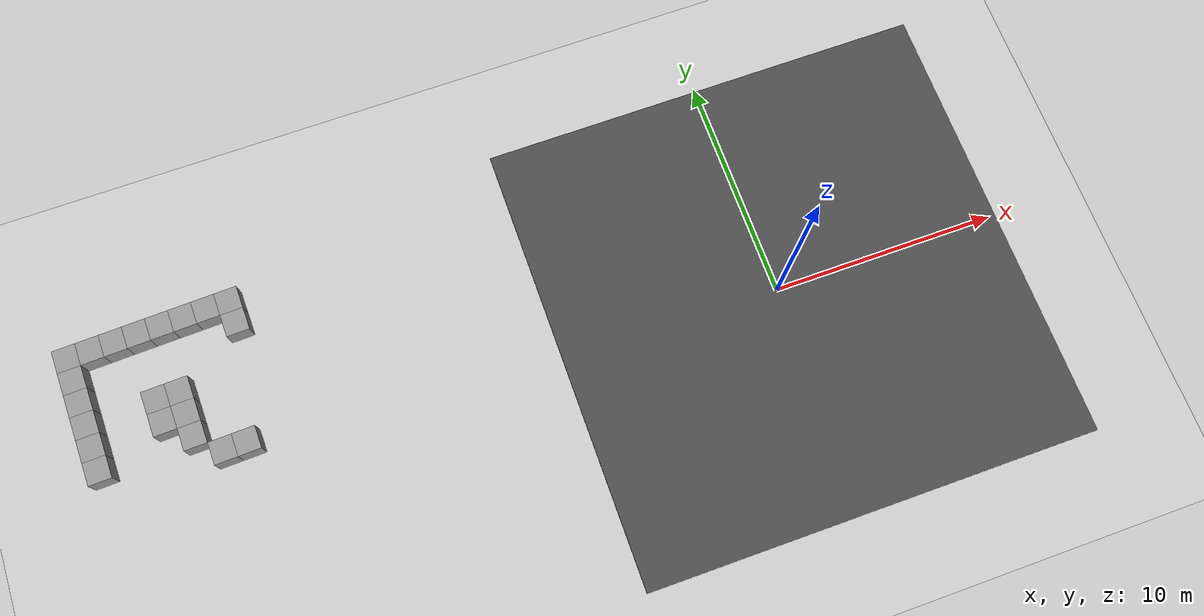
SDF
<sdf version="1.6">
 <world name="default">
  <model name="ground_plane">
   <static>1</static>
   <link name="link">
    <collision name="collision">
     <geometry><plane><normal>0 0 1</normal><size>100 100</size></plane></geometry>
     <surface><friction><ode><mu>100</mu><mu2>50</mu2></ode></friction></surface>
    </collision>
    <visual name="visual">
     <cast_shadows>0</cast_shadows>
     <geometry><plane><normal>0 0 1</normal><size>100 100</size></plane></geometry>
     <material>
      <script><uri>file://media/materials/scripts/gazebo.material</uri><name>Gazebo/Grey</name></script>
     </material>
    </visual>
    <velocity_decay><linear>0</linear><angular>0</angular></velocity_decay>
   </link>
  </model>
  <model name="asphalt_plane">
   <static>1</static>
   <link name="link">
    <collision name="collision"><geometry><box><size>20 20 0.1</size></box></geometry></collision>
    <visual name="visual">
     <cast_shadows>0</cast_shadows>
     <geometry><box><size>20 20 0.1</size></box></geometry>
     <material>
      <script>
       <uri>model://asphalt_plane/materials/scripts</uri>
       <uri>model://asphalt_plane/materials/textures</uri>
       <name>vrc/asphalt</name>
      </script>
     </material>
    </visual>
    <velocity_decay><linear>0</linear><angular>0</angular></velocity_decay>
   </link>
   <pose>0.276446 -0.119478 0 0 -0 0</pose>
  </model>
  <model name="maze">
   <link name="link_clone_22">
    <pose>-1.9747 7.43991 0 0 -0 0</pose>
    <inertial>
     <mass>10</mass>
     <inertia>
      <ixx>0.166667</ixx>
      <ixy>0</ixy>
      <ixz>0</ixz>
      <iyy>0.166667</iyy>
      <iyz>0</iyz>
      <izz>0.166667</izz>
     </inertia>
    </inertial>
    <visual name="visual">
     <geometry><box><size>1 1 1</size></box></geometry>
     <material>
      <script><name>Gazebo/Grey</name><uri>file://media/materials/scripts/gazebo.material</uri></script>
      <ambient>0.3 0.3 0.3 1</ambient>
      <diffuse>0.7 0.7 0.7 1</diffuse>
      <specular>0.01 0.01 0.01 1</specular>
      <emissive>0 0 0 1</emissive>
      <shader type="vertex"><normal_map>__default__</normal_map></shader>
     </material>
    </visual>
    <collision name="collision">
     <geometry><box><size>1 1 1</size></box></geometry>
     <surface>
      <friction>
       <ode><mu>1</mu><mu2>1</mu2><fdir1>0 0 0</fdir1><slip1>0</slip1><slip2>0</slip2></ode>
       <torsional>
        <coefficient>1</coefficient>
        <patch_radius>0</patch_radius>
        <surface_radius>0</surface_radius>
        <use_patch_radius>1</use_patch_radius>
        <ode><slip>0</slip></ode>
       </torsional>
      </friction>
      <bounce><restitution_coefficient>0</restitution_coefficient><threshold>1e+06</threshold></bounce>
      <contact>
       <collide_without_contact>0</collide_without_contact>
       <collide_without_contact_bitmask>1</collide_without_contact_bitmask>
       <collide_bitmask>1</collide_bitmask>
       <ode>
        <soft_cfm>0</soft_cfm>
        <soft_erp>0.2</soft_erp>
        <kp>1e+13</kp>
        <kd>1</kd>
        <max_vel>0.01</max_vel>
        <min_depth>0</min_depth>
       </ode>
       <bullet>
        <split_impulse>1</split_impulse>
        <split_impulse_penetration_threshold>-0.01</split_impulse_penetration_threshold>
        <soft_cfm>0</soft_cfm>
        <soft_erp>0.2</soft_erp>
        <kp>1e+13</kp>
        <kd>1</kd>
       </bullet>
      </contact>
     </surface>
    </collision>
   </link>
   <link name="link_clone_23">
    <pose>-2.9747 8.43991 0 0 -0 0</pose>
    <inertial>
     <mass>10</mass>
     <inertia>
      <ixx>0.166667</ixx>
      <ixy>0</ixy>
      <ixz>0</ixz>
      <iyy>0.166667</iyy>
      <iyz>0</iyz>
      <izz>0.166667</izz>
     </inertia>
    </inertial>
    <visual name="visual">
     <geometry><box><size>1 1 1</size></box></geometry>
     <material>
      <script><name>Gazebo/Grey</name><uri>file://media/materials/scripts/gazebo.material</uri></script>
      <ambient>0.3 0.3 0.3 1</ambient>
      <diffuse>0.7 0.7 0.7 1</diffuse>
      <specular>0.01 0.01 0.01 1</specular>
      <emissive>0 0 0 1</emissive>
      <shader type="vertex"><normal_map>__default__</normal_map></shader>
     </material>
    </visual>
    <collision name="collision">
     <geometry><box><size>1 1 1</size></box></geometry>
     <surface>
      <friction>
       <ode><mu>1</mu><mu2>1</mu2><fdir1>0 0 0</fdir1><slip1>0</slip1><slip2>0</slip2></ode>
       <torsional>
        <coefficient>1</coefficient>
        <patch_radius>0</patch_radius>
        <surface_radius>0</surface_radius>
        <use_patch_radius>1</use_patch_radius>
        <ode><slip>0</slip></ode>
       </torsional>
      </friction>
      <bounce><restitution_coefficient>0</restitution_coefficient><threshold>1e+06</threshold></bounce>
      <contact>
       <collide_without_contact>0</collide_without_contact>
       <collide_without_contact_bitmask>1</collide_without_contact_bitmask>
       <collide_bitmask>1</collide_bitmask>
       <ode>
        <soft_cfm>0</soft_cfm>
        <soft_erp>0.2</soft_erp>
        <kp>1e+13</kp>
        <kd>1</kd>
        <max_vel>0.01</max_vel>
        <min_depth>0</min_depth>
       </ode>
       <bullet>
        <split_impulse>1</split_impulse>
        <split_impulse_penetration_threshold>-0.01</split_impulse_penetration_threshold>
        <soft_cfm>0</soft_cfm>
        <soft_erp>0.2</soft_erp>
        <kp>1e+13</kp>
        <kd>1</kd>
       </bullet>
      </contact>
     </surface>
    </collision>
   </link>
   <link name="link_clone_24">
    <pose>-3.9747 9.43991 0 0 -0 0</pose>
    <inertial>
     <mass>10</mass>
     <inertia>
      <ixx>0.166667</ixx>
      <ixy>0</ixy>
      <ixz>0</ixz>
      <iyy>0.166667</iyy>
      <iyz>0</iyz>
      <izz>0.166667</izz>
     </inertia>
    </inertial>
    <visual name="visual">
     <geometry><box><size>1 1 1</size></box></geometry>
     <material>
      <script><name>Gazebo/Grey</name><uri>file://media/materials/scripts/gazebo.material</uri></script>
      <ambient>0.3 0.3 0.3 1</ambient>
      <diffuse>0.7 0.7 0.7 1</diffuse>
      <specular>0.01 0.01 0.01 1</specular>
      <emissive>0 0 0 1</emissive>
      <shader type="vertex"><normal_map>__default__</normal_map></shader>
     </material>
    </visual>
    <collision name="collision">
     <geometry><box><size>1 1 1</size></box></geometry>
     <surface>
      <friction>
       <ode><mu>1</mu><mu2>1</mu2><fdir1>0 0 0</fdir1><slip1>0</slip1><slip2>0</slip2></ode>
       <torsional>
        <coefficient>1</coefficient>
        <patch_radius>0</patch_radius>
        <surface_radius>0</surface_radius>
        <use_patch_radius>1</use_patch_radius>
        <ode><slip>0</slip></ode>
       </torsional>
      </friction>
      <bounce><restitution_coefficient>0</restitution_coefficient><threshold>1e+06</threshold></bounce>
      <contact>
       <collide_without_contact>0</collide_without_contact>
       <collide_without_contact_bitmask>1</collide_without_contact_bitmask>
       <collide_bitmask>1</collide_bitmask>
       <ode>
        <soft_cfm>0</soft_cfm>
        <soft_erp>0.2</soft_erp>
        <kp>1e+13</kp>
        <kd>1</kd>
        <max_vel>0.01</max_vel>
        <min_depth>0</min_depth>
       </ode>
       <bullet>
        <split_impulse>1</split_impulse>
        <split_impulse_penetration_threshold>-0.01</split_impulse_penetration_threshold>
        <soft_cfm>0</soft_cfm>
        <soft_erp>0.2</soft_erp>
        <kp>1e+13</kp>
        <kd>1</kd>
       </bullet>
      </contact>
     </surface>
    </collision>
   </link>
   <link name="link_clone_29">
    <pose>-6.9747 8.43991 0 0 -0 0</pose>
    <inertial>
     <mass>10</mass>
     <inertia>
      <ixx>0.166667</ixx>
      <ixy>0</ixy>
      <ixz>0</ixz>
      <iyy>0.166667</iyy>
      <iyz>0</iyz>
      <izz>0.166667</izz>
     </inertia>
    </inertial>
    <visual name="visual">
     <geometry><box><size>1 1 1</size></box></geometry>
     <material>
      <script><name>Gazebo/Grey</name><uri>file://media/materials/scripts/gazebo.material</uri></script>
      <ambient>0.3 0.3 0.3 1</ambient>
      <diffuse>0.7 0.7 0.7 1</diffuse>
      <specular>0.01 0.01 0.01 1</specular>
      <emissive>0 0 0 1</emissive>
      <shader type="vertex"><normal_map>__default__</normal_map></shader>
     </material>
    </visual>
    <collision name="collision">
     <geometry><box><size>1 1 1</size></box></geometry>
     <surface>
      <friction>
       <ode><mu>1</mu><mu2>1</mu2><fdir1>0 0 0</fdir1><slip1>0</slip1><slip2>0</slip2></ode>
       <torsional>
        <coefficient>1</coefficient>
        <patch_radius>0</patch_radius>
        <surface_radius>0</surface_radius>
        <use_patch_radius>1</use_patch_radius>
        <ode><slip>0</slip></ode>
       </torsional>
      </friction>
      <bounce><restitution_coefficient>0</restitution_coefficient><threshold>1e+06</threshold></bounce>
      <contact>
       <collide_without_contact>0</collide_without_contact>
       <collide_without_contact_bitmask>1</collide_without_contact_bitmask>
       <collide_bitmask>1</collide_bitmask>
       <ode>
        <soft_cfm>0</soft_cfm>
        <soft_erp>0.2</soft_erp>
        <kp>1e+13</kp>
        <kd>1</kd>
        <max_vel>0.01</max_vel>
        <min_depth>0</min_depth>
       </ode>
       <bullet>
        <split_impulse>1</split_impulse>
        <split_impulse_penetration_threshold>-0.01</split_impulse_penetration_threshold>
        <soft_cfm>0</soft_cfm>
        <soft_erp>0.2</soft_erp>
        <kp>1e+13</kp>
        <kd>1</kd>
       </bullet>
      </contact>
     </surface>
    </collision>
   </link>
   <link name="link_clone_30">
    <pose>-6.9747 9.43991 0 0 -0 0</pose>
    <inertial>
     <mass>10</mass>
     <inertia>
      <ixx>0.166667</ixx>
      <ixy>0</ixy>
      <ixz>0</ixz>
      <iyy>0.166667</iyy>
      <iyz>0</iyz>
      <izz>0.166667</izz>
     </inertia>
    </inertial>
    <visual name="visual">
     <geometry><box><size>1 1 1</size></box></geometry>
     <material>
      <script><name>Gazebo/Grey</name><uri>file://media/materials/scripts/gazebo.material</uri></script>
      <ambient>0.3 0.3 0.3 1</ambient>
      <diffuse>0.7 0.7 0.7 1</diffuse>
      <specular>0.01 0.01 0.01 1</specular>
      <emissive>0 0 0 1</emissive>
      <shader type="vertex"><normal_map>__default__</normal_map></shader>
     </material>
    </visual>
    <collision name="collision">
     <geometry><box><size>1 1 1</size></box></geometry>
     <surface>
      <friction>
       <ode><mu>1</mu><mu2>1</mu2><fdir1>0 0 0</fdir1><slip1>0</slip1><slip2>0</slip2></ode>
       <torsional>
        <coefficient>1</coefficient>
        <patch_radius>0</patch_radius>
        <surface_radius>0</surface_radius>
        <use_patch_radius>1</use_patch_radius>
        <ode><slip>0</slip></ode>
       </torsional>
      </friction>
      <bounce><restitution_coefficient>0</restitution_coefficient><threshold>1e+06</threshold></bounce>
      <contact>
       <collide_without_contact>0</collide_without_contact>
       <collide_without_contact_bitmask>1</collide_without_contact_bitmask>
       <collide_bitmask>1</collide_bitmask>
       <ode>
        <soft_cfm>0</soft_cfm>
        <soft_erp>0.2</soft_erp>
        <kp>1e+13</kp>
        <kd>1</kd>
        <max_vel>0.01</max_vel>
        <min_depth>0</min_depth>
       </ode>
       <bullet>
        <split_impulse>1</split_impulse>
        <split_impulse_penetration_threshold>-0.01</split_impulse_penetration_threshold>
        <soft_cfm>0</soft_cfm>
        <soft_erp>0.2</soft_erp>
        <kp>1e+13</kp>
        <kd>1</kd>
       </bullet>
      </contact>
     </surface>
    </collision>
   </link>
   <link name="link_clone_31">
    <pose>-6.9747 10.4399 -0 0 -0 0</pose>
    <inertial>
     <mass>10</mass>
     <inertia>
      <ixx>0.166667</ixx>
      <ixy>0</ixy>
      <ixz>0</ixz>
      <iyy>0.166667</iyy>
      <iyz>0</iyz>
      <izz>0.166667</izz>
     </inertia>
    </inertial>
    <visual name="visual">
     <geometry><box><size>1 1 1</size></box></geometry>
     <material>
      <script><name>Gazebo/Grey</name><uri>file://media/materials/scripts/gazebo.material</uri></script>
      <ambient>0.3 0.3 0.3 1</ambient>
      <diffuse>0.7 0.7 0.7 1</diffuse>
      <specular>0.01 0.01 0.01 1</specular>
      <emissive>0 0 0 1</emissive>
      <shader type="vertex"><normal_map>__default__</normal_map></shader>
     </material>
    </visual>
    <collision name="collision">
     <geometry><box><size>1 1 1</size></box></geometry>
     <surface>
      <friction>
       <ode><mu>1</mu><mu2>1</mu2><fdir1>0 0 0</fdir1><slip1>0</slip1><slip2>0</slip2></ode>
       <torsional>
        <coefficient>1</coefficient>
        <patch_radius>0</patch_radius>
        <surface_radius>0</surface_radius>
        <use_patch_radius>1</use_patch_radius>
        <ode><slip>0</slip></ode>
       </torsional>
      </friction>
      <bounce><restitution_coefficient>0</restitution_coefficient><threshold>1e+06</threshold></bounce>
      <contact>
       <collide_without_contact>0</collide_without_contact>
       <collide_without_contact_bitmask>1</collide_without_contact_bitmask>
       <collide_bitmask>1</collide_bitmask>
       <ode>
        <soft_cfm>0</soft_cfm>
        <soft_erp>0.2</soft_erp>
        <kp>1e+13</kp>
        <kd>1</kd>
        <max_vel>0.01</max_vel>
        <min_depth>0</min_depth>
       </ode>
       <bullet>
        <split_impulse>1</split_impulse>
        <split_impulse_penetration_threshold>-0.01</split_impulse_penetration_threshold>
        <soft_cfm>0</soft_cfm>
        <soft_erp>0.2</soft_erp>
        <kp>1e+13</kp>
        <kd>1</kd>
       </bullet>
      </contact>
     </surface>
    </collision>
   </link>
   <link name="link_clone_32">
    <pose>-3.9747 10.4399 0 0 -0 0</pose>
    <inertial>
     <mass>10</mass>
     <inertia>
      <ixx>0.166667</ixx>
      <ixy>0</ixy>
      <ixz>0</ixz>
      <iyy>0.166667</iyy>
      <iyz>0</iyz>
      <izz>0.166667</izz>
     </inertia>
    </inertial>
    <visual name="visual">
     <geometry><box><size>1 1 1</size></box></geometry>
     <material>
      <script><name>Gazebo/Grey</name><uri>file://media/materials/scripts/gazebo.material</uri></script>
      <ambient>0.3 0.3 0.3 1</ambient>
      <diffuse>0.7 0.7 0.7 1</diffuse>
      <specular>0.01 0.01 0.01 1</specular>
      <emissive>0 0 0 1</emissive>
      <shader type="vertex"><normal_map>__default__</normal_map></shader>
     </material>
    </visual>
    <collision name="collision">
     <geometry><box><size>1 1 1</size></box></geometry>
     <surface>
      <friction>
       <ode><mu>1</mu><mu2>1</mu2><fdir1>0 0 0</fdir1><slip1>0</slip1><slip2>0</slip2></ode>
       <torsional>
        <coefficient>1</coefficient>
        <patch_radius>0</patch_radius>
        <surface_radius>0</surface_radius>
        <use_patch_radius>1</use_patch_radius>
        <ode><slip>0</slip></ode>
       </torsional>
      </friction>
      <bounce><restitution_coefficient>0</restitution_coefficient><threshold>1e+06</threshold></bounce>
      <contact>
       <collide_without_contact>0</collide_without_contact>
       <collide_without_contact_bitmask>1</collide_without_contact_bitmask>
       <collide_bitmask>1</collide_bitmask>
       <ode>
        <soft_cfm>0</soft_cfm>
        <soft_erp>0.2</soft_erp>
        <kp>1e+13</kp>
        <kd>1</kd>
        <max_vel>0.01</max_vel>
        <min_depth>0</min_depth>
       </ode>
       <bullet>
        <split_impulse>1</split_impulse>
        <split_impulse_penetration_threshold>-0.01</split_impulse_penetration_threshold>
        <soft_cfm>0</soft_cfm>
        <soft_erp>0.2</soft_erp>
        <kp>1e+13</kp>
        <kd>1</kd>
       </bullet>
      </contact>
     </surface>
    </collision>
   </link>
   <link name="link_clone_33">
    <pose>-6.9747 11.4399 -0 0 -0 0</pose>
    <inertial>
     <mass>10</mass>
     <inertia>
      <ixx>0.166667</ixx>
      <ixy>0</ixy>
      <ixz>0</ixz>
      <iyy>0.166667</iyy>
      <iyz>0</iyz>
      <izz>0.166667</izz>
     </inertia>
    </inertial>
    <visual name="visual">
     <geometry><box><size>1 1 1</size></box></geometry>
     <material>
      <script><name>Gazebo/Grey</name><uri>file://media/materials/scripts/gazebo.material</uri></script>
      <ambient>0.3 0.3 0.3 1</ambient>
      <diffuse>0.7 0.7 0.7 1</diffuse>
      <specular>0.01 0.01 0.01 1</specular>
      <emissive>0 0 0 1</emissive>
      <shader type="vertex"><normal_map>__default__</normal_map></shader>
     </material>
    </visual>
    <collision name="collision">
     <geometry><box><size>1 1 1</size></box></geometry>
     <surface>
      <friction>
       <ode><mu>1</mu><mu2>1</mu2><fdir1>0 0 0</fdir1><slip1>0</slip1><slip2>0</slip2></ode>
       <torsional>
        <coefficient>1</coefficient>
        <patch_radius>0</patch_radius>
        <surface_radius>0</surface_radius>
        <use_patch_radius>1</use_patch_radius>
        <ode><slip>0</slip></ode>
       </torsional>
      </friction>
      <bounce><restitution_coefficient>0</restitution_coefficient><threshold>1e+06</threshold></bounce>
      <contact>
       <collide_without_contact>0</collide_without_contact>
       <collide_without_contact_bitmask>1</collide_without_contact_bitmask>
       <collide_bitmask>1</collide_bitmask>
       <ode>
        <soft_cfm>0</soft_cfm>
        <soft_erp>0.2</soft_erp>
        <kp>1e+13</kp>
        <kd>1</kd>
        <max_vel>0.01</max_vel>
        <min_depth>0</min_depth>
       </ode>
       <bullet>
        <split_impulse>1</split_impulse>
        <split_impulse_penetration_threshold>-0.01</split_impulse_penetration_threshold>
        <soft_cfm>0</soft_cfm>
        <soft_erp>0.2</soft_erp>
        <kp>1e+13</kp>
        <kd>1</kd>
       </bullet>
      </contact>
     </surface>
    </collision>
   </link>
   <link name="link_clone_34">
    <pose>-6.9747 12.4399 -0 0 -0 0</pose>
    <inertial>
     <mass>10</mass>
     <inertia>
      <ixx>0.166667</ixx>
      <ixy>0</ixy>
      <ixz>0</ixz>
      <iyy>0.166667</iyy>
      <iyz>0</iyz>
      <izz>0.166667</izz>
     </inertia>
    </inertial>
    <visual name="visual">
     <geometry><box><size>1 1 1</size></box></geometry>
     <material>
      <script><name>Gazebo/Grey</name><uri>file://media/materials/scripts/gazebo.material</uri></script>
      <ambient>0.3 0.3 0.3 1</ambient>
      <diffuse>0.7 0.7 0.7 1</diffuse>
      <specular>0.01 0.01 0.01 1</specular>
      <emissive>0 0 0 1</emissive>
      <shader type="vertex"><normal_map>__default__</normal_map></shader>
     </material>
    </visual>
    <collision name="collision">
     <geometry><box><size>1 1 1</size></box></geometry>
     <surface>
      <friction>
       <ode><mu>1</mu><mu2>1</mu2><fdir1>0 0 0</fdir1><slip1>0</slip1><slip2>0</slip2></ode>
       <torsional>
        <coefficient>1</coefficient>
        <patch_radius>0</patch_radius>
        <surface_radius>0</surface_radius>
        <use_patch_radius>1</use_patch_radius>
        <ode><slip>0</slip></ode>
       </torsional>
      </friction>
      <bounce><restitution_coefficient>0</restitution_coefficient><threshold>1e+06</threshold></bounce>
      <contact>
       <collide_without_contact>0</collide_without_contact>
       <collide_without_contact_bitmask>1</collide_without_contact_bitmask>
       <collide_bitmask>1</collide_bitmask>
       <ode>
        <soft_cfm>0</soft_cfm>
        <soft_erp>0.2</soft_erp>
        <kp>1e+13</kp>
        <kd>1</kd>
        <max_vel>0.01</max_vel>
        <min_depth>0</min_depth>
       </ode>
       <bullet>
        <split_impulse>1</split_impulse>
        <split_impulse_penetration_threshold>-0.01</split_impulse_penetration_threshold>
        <soft_cfm>0</soft_cfm>
        <soft_erp>0.2</soft_erp>
        <kp>1e+13</kp>
        <kd>1</kd>
       </bullet>
      </contact>
     </surface>
    </collision>
   </link>
   <link name="link_clone_35">
    <pose>-6.9747 13.4399 -0 0 -0 0</pose>
    <inertial>
     <mass>10</mass>
     <inertia>
      <ixx>0.166667</ixx>
      <ixy>0</ixy>
      <ixz>0</ixz>
      <iyy>0.166667</iyy>
      <iyz>0</iyz>
      <izz>0.166667</izz>
     </inertia>
    </inertial>
    <visual name="visual">
     <geometry><box><size>1 1 1</size></box></geometry>
     <material>
      <script><name>Gazebo/Grey</name><uri>file://media/materials/scripts/gazebo.material</uri></script>
      <ambient>0.3 0.3 0.3 1</ambient>
      <diffuse>0.7 0.7 0.7 1</diffuse>
      <specular>0.01 0.01 0.01 1</specular>
      <emissive>0 0 0 1</emissive>
      <shader type="vertex"><normal_map>__default__</normal_map></shader>
     </material>
    </visual>
    <collision name="collision">
     <geometry><box><size>1 1 1</size></box></geometry>
     <surface>
      <friction>
       <ode><mu>1</mu><mu2>1</mu2><fdir1>0 0 0</fdir1><slip1>0</slip1><slip2>0</slip2></ode>
       <torsional>
        <coefficient>1</coefficient>
        <patch_radius>0</patch_radius>
        <surface_radius>0</surface_radius>
        <use_patch_radius>1</use_patch_radius>
        <ode><slip>0</slip></ode>
       </torsional>
      </friction>
      <bounce><restitution_coefficient>0</restitution_coefficient><threshold>1e+06</threshold></bounce>
      <contact>
       <collide_without_contact>0</collide_without_contact>
       <collide_without_contact_bitmask>1</collide_without_contact_bitmask>
       <collide_bitmask>1</collide_bitmask>
       <ode>
        <soft_cfm>0</soft_cfm>
        <soft_erp>0.2</soft_erp>
        <kp>1e+13</kp>
        <kd>1</kd>
        <max_vel>0.01</max_vel>
        <min_depth>0</min_depth>
       </ode>
       <bullet>
        <split_impulse>1</split_impulse>
        <split_impulse_penetration_threshold>-0.01</split_impulse_penetration_threshold>
        <soft_cfm>0</soft_cfm>
        <soft_erp>0.2</soft_erp>
        <kp>1e+13</kp>
        <kd>1</kd>
       </bullet>
      </contact>
     </surface>
    </collision>
   </link>
   <link name="link_clone_36">
    <pose>-5.9747 13.4399 0 0 -0 0</pose>
    <inertial>
     <mass>10</mass>
     <inertia>
      <ixx>0.166667</ixx>
      <ixy>0</ixy>
      <ixz>0</ixz>
      <iyy>0.166667</iyy>
      <iyz>0</iyz>
      <izz>0.166667</izz>
     </inertia>
    </inertial>
    <visual name="visual">
     <geometry><box><size>1 1 1</size></box></geometry>
     <material>
      <script><name>Gazebo/Grey</name><uri>file://media/materials/scripts/gazebo.material</uri></script>
      <ambient>0.3 0.3 0.3 1</ambient>
      <diffuse>0.7 0.7 0.7 1</diffuse>
      <specular>0.01 0.01 0.01 1</specular>
      <emissive>0 0 0 1</emissive>
      <shader type="vertex"><normal_map>__default__</normal_map></shader>
     </material>
    </visual>
    <collision name="collision">
     <geometry><box><size>1 1 1</size></box></geometry>
     <surface>
      <friction>
       <ode><mu>1</mu><mu2>1</mu2><fdir1>0 0 0</fdir1><slip1>0</slip1><slip2>0</slip2></ode>
       <torsional>
        <coefficient>1</coefficient>
        <patch_radius>0</patch_radius>
        <surface_radius>0</surface_radius>
        <use_patch_radius>1</use_patch_radius>
        <ode><slip>0</slip></ode>
       </torsional>
      </friction>
      <bounce><restitution_coefficient>0</restitution_coefficient><threshold>1e+06</threshold></bounce>
      <contact>
       <collide_without_contact>0</collide_without_contact>
       <collide_without_contact_bitmask>1</collide_without_contact_bitmask>
       <collide_bitmask>1</collide_bitmask>
       <ode>
        <soft_cfm>0</soft_cfm>
        <soft_erp>0.2</soft_erp>
        <kp>1e+13</kp>
        <kd>1</kd>
        <max_vel>0.01</max_vel>
        <min_depth>0</min_depth>
       </ode>
       <bullet>
        <split_impulse>1</split_impulse>
        <split_impulse_penetration_threshold>-0.01</split_impulse_penetration_threshold>
        <soft_cfm>0</soft_cfm>
        <soft_erp>0.2</soft_erp>
        <kp>1e+13</kp>
        <kd>1</kd>
       </bullet>
      </contact>
     </surface>
    </collision>
   </link>
   <link name="link_clone_37">
    <pose>-4.9747 13.4399 0 0 -0 0</pose>
    <inertial>
     <mass>10</mass>
     <inertia>
      <ixx>0.166667</ixx>
      <ixy>0</ixy>
      <ixz>0</ixz>
      <iyy>0.166667</iyy>
      <iyz>0</iyz>
      <izz>0.166667</izz>
     </inertia>
    </inertial>
    <visual name="visual">
     <geometry><box><size>1 1 1</size></box></geometry>
     <material>
      <script><name>Gazebo/Grey</name><uri>file://media/materials/scripts/gazebo.material</uri></script>
      <ambient>0.3 0.3 0.3 1</ambient>
      <diffuse>0.7 0.7 0.7 1</diffuse>
      <specular>0.01 0.01 0.01 1</specular>
      <emissive>0 0 0 1</emissive>
      <shader type="vertex"><normal_map>__default__</normal_map></shader>
     </material>
    </visual>
    <collision name="collision">
     <geometry><box><size>1 1 1</size></box></geometry>
     <surface>
      <friction>
       <ode><mu>1</mu><mu2>1</mu2><fdir1>0 0 0</fdir1><slip1>0</slip1><slip2>0</slip2></ode>
       <torsional>
        <coefficient>1</coefficient>
        <patch_radius>0</patch_radius>
        <surface_radius>0</surface_radius>
        <use_patch_radius>1</use_patch_radius>
        <ode><slip>0</slip></ode>
       </torsional>
      </friction>
      <bounce><restitution_coefficient>0</restitution_coefficient><threshold>1e+06</threshold></bounce>
      <contact>
       <collide_without_contact>0</collide_without_contact>
       <collide_without_contact_bitmask>1</collide_without_contact_bitmask>
       <collide_bitmask>1</collide_bitmask>
       <ode>
        <soft_cfm>0</soft_cfm>
        <soft_erp>0.2</soft_erp>
        <kp>1e+13</kp>
        <kd>1</kd>
        <max_vel>0.01</max_vel>
        <min_depth>0</min_depth>
       </ode>
       <bullet>
        <split_impulse>1</split_impulse>
        <split_impulse_penetration_threshold>-0.01</split_impulse_penetration_threshold>
        <soft_cfm>0</soft_cfm>
        <soft_erp>0.2</soft_erp>
        <kp>1e+13</kp>
        <kd>1</kd>
       </bullet>
      </contact>
     </surface>
    </collision>
   </link>
   <link name="link_clone_38">
    <pose>-3.9747 13.4399 0 0 -0 0</pose>
    <inertial>
     <mass>10</mass>
     <inertia>
      <ixx>0.166667</ixx>
      <ixy>0</ixy>
      <ixz>0</ixz>
      <iyy>0.166667</iyy>
      <iyz>0</iyz>
      <izz>0.166667</izz>
     </inertia>
    </inertial>
    <visual name="visual">
     <geometry><box><size>1 1 1</size></box></geometry>
     <material>
      <script><name>Gazebo/Grey</name><uri>file://media/materials/scripts/gazebo.material</uri></script>
      <ambient>0.3 0.3 0.3 1</ambient>
      <diffuse>0.7 0.7 0.7 1</diffuse>
      <specular>0.01 0.01 0.01 1</specular>
      <emissive>0 0 0 1</emissive>
      <shader type="vertex"><normal_map>__default__</normal_map></shader>
     </material>
    </visual>
    <collision name="collision">
     <geometry><box><size>1 1 1</size></box></geometry>
     <surface>
      <friction>
       <ode><mu>1</mu><mu2>1</mu2><fdir1>0 0 0</fdir1><slip1>0</slip1><slip2>0</slip2></ode>
       <torsional>
        <coefficient>1</coefficient>
        <patch_radius>0</patch_radius>
        <surface_radius>0</surface_radius>
        <use_patch_radius>1</use_patch_radius>
        <ode><slip>0</slip></ode>
       </torsional>
      </friction>
      <bounce><restitution_coefficient>0</restitution_coefficient><threshold>1e+06</threshold></bounce>
      <contact>
       <collide_without_contact>0</collide_without_contact>
       <collide_without_contact_bitmask>1</collide_without_contact_bitmask>
       <collide_bitmask>1</collide_bitmask>
       <ode>
        <soft_cfm>0</soft_cfm>
        <soft_erp>0.2</soft_erp>
        <kp>1e+13</kp>
        <kd>1</kd>
        <max_vel>0.01</max_vel>
        <min_depth>0</min_depth>
       </ode>
       <bullet>
        <split_impulse>1</split_impulse>
        <split_impulse_penetration_threshold>-0.01</split_impulse_penetration_threshold>
        <soft_cfm>0</soft_cfm>
        <soft_erp>0.2</soft_erp>
        <kp>1e+13</kp>
        <kd>1</kd>
       </bullet>
      </contact>
     </surface>
    </collision>
   </link>
   <link name="link_clone_39">
    <pose>-2.9747 13.4399 -0 0 -0 0</pose>
    <inertial>
     <mass>10</mass>
     <inertia>
      <ixx>0.166667</ixx>
      <ixy>0</ixy>
      <ixz>0</ixz>
      <iyy>0.166667</iyy>
      <iyz>0</iyz>
      <izz>0.166667</izz>
     </inertia>
    </inertial>
    <visual name="visual">
     <geometry><box><size>1 1 1</size></box></geometry>
     <material>
      <script><name>Gazebo/Grey</name><uri>file://media/materials/scripts/gazebo.material</uri></script>
      <ambient>0.3 0.3 0.3 1</ambient>
      <diffuse>0.7 0.7 0.7 1</diffuse>
      <specular>0.01 0.01 0.01 1</specular>
      <emissive>0 0 0 1</emissive>
      <shader type="vertex"><normal_map>__default__</normal_map></shader>
     </material>
    </visual>
    <collision name="collision">
     <geometry><box><size>1 1 1</size></box></geometry>
     <surface>
      <friction>
       <ode><mu>1</mu><mu2>1</mu2><fdir1>0 0 0</fdir1><slip1>0</slip1><slip2>0</slip2></ode>
       <torsional>
        <coefficient>1</coefficient>
        <patch_radius>0</patch_radius>
        <surface_radius>0</surface_radius>
        <use_patch_radius>1</use_patch_radius>
        <ode><slip>0</slip></ode>
       </torsional>
      </friction>
      <bounce><restitution_coefficient>0</restitution_coefficient><threshold>1e+06</threshold></bounce>
      <contact>
       <collide_without_contact>0</collide_without_contact>
       <collide_without_contact_bitmask>1</collide_without_contact_bitmask>
       <collide_bitmask>1</collide_bitmask>
       <ode>
        <soft_cfm>0</soft_cfm>
        <soft_erp>0.2</soft_erp>
        <kp>1e+13</kp>
        <kd>1</kd>
        <max_vel>0.01</max_vel>
        <min_depth>0</min_depth>
       </ode>
       <bullet>
        <split_impulse>1</split_impulse>
        <split_impulse_penetration_threshold>-0.01</split_impulse_penetration_threshold>
        <soft_cfm>0</soft_cfm>
        <soft_erp>0.2</soft_erp>
        <kp>1e+13</kp>
        <kd>1</kd>
       </bullet>
      </contact>
     </surface>
    </collision>
   </link>
   <link name="link_clone_40">
    <pose>-1.9747 13.4399 -0 0 -0 0</pose>
    <inertial>
     <mass>10</mass>
     <inertia>
      <ixx>0.166667</ixx>
      <ixy>0</ixy>
      <ixz>0</ixz>
      <iyy>0.166667</iyy>
      <iyz>0</iyz>
      <izz>0.166667</izz>
     </inertia>
    </inertial>
    <visual name="visual">
     <geometry><box><size>1 1 1</size></box></geometry>
     <material>
      <script><name>Gazebo/Grey</name><uri>file://media/materials/scripts/gazebo.material</uri></script>
      <ambient>0.3 0.3 0.3 1</ambient>
      <diffuse>0.7 0.7 0.7 1</diffuse>
      <specular>0.01 0.01 0.01 1</specular>
      <emissive>0 0 0 1</emissive>
      <shader type="vertex"><normal_map>__default__</normal_map></shader>
     </material>
    </visual>
    <collision name="collision">
     <geometry><box><size>1 1 1</size></box></geometry>
     <surface>
      <friction>
       <ode><mu>1</mu><mu2>1</mu2><fdir1>0 0 0</fdir1><slip1>0</slip1><slip2>0</slip2></ode>
       <torsional>
        <coefficient>1</coefficient>
        <patch_radius>0</patch_radius>
        <surface_radius>0</surface_radius>
        <use_patch_radius>1</use_patch_radius>
        <ode><slip>0</slip></ode>
       </torsional>
      </friction>
      <bounce><restitution_coefficient>0</restitution_coefficient><threshold>1e+06</threshold></bounce>
      <contact>
       <collide_without_contact>0</collide_without_contact>
       <collide_without_contact_bitmask>1</collide_without_contact_bitmask>
       <collide_bitmask>1</collide_bitmask>
       <ode>
        <soft_cfm>0</soft_cfm>
        <soft_erp>0.2</soft_erp>
        <kp>1e+13</kp>
        <kd>1</kd>
        <max_vel>0.01</max_vel>
        <min_depth>0</min_depth>
       </ode>
       <bullet>
        <split_impulse>1</split_impulse>
        <split_impulse_penetration_threshold>-0.01</split_impulse_penetration_threshold>
        <soft_cfm>0</soft_cfm>
        <soft_erp>0.2</soft_erp>
        <kp>1e+13</kp>
        <kd>1</kd>
       </bullet>
      </contact>
     </surface>
    </collision>
   </link>
   <link name="link_clone_41">
    <pose>-0.974701 13.4399 0 0 -0 0</pose>
    <inertial>
     <mass>10</mass>
     <inertia>
      <ixx>0.166667</ixx>
      <ixy>0</ixy>
      <ixz>0</ixz>
      <iyy>0.166667</iyy>
      <iyz>0</iyz>
      <izz>0.166667</izz>
     </inertia>
    </inertial>
    <visual name="visual">
     <geometry><box><size>1 1 1</size></box></geometry>
     <material>
      <script><name>Gazebo/Grey</name><uri>file://media/materials/scripts/gazebo.material</uri></script>
      <ambient>0.3 0.3 0.3 1</ambient>
      <diffuse>0.7 0.7 0.7 1</diffuse>
      <specular>0.01 0.01 0.01 1</specular>
      <emissive>0 0 0 1</emissive>
      <shader type="vertex"><normal_map>__default__</normal_map></shader>
     </material>
    </visual>
    <collision name="collision">
     <geometry><box><size>1 1 1</size></box></geometry>
     <surface>
      <friction>
       <ode><mu>1</mu><mu2>1</mu2><fdir1>0 0 0</fdir1><slip1>0</slip1><slip2>0</slip2></ode>
       <torsional>
        <coefficient>1</coefficient>
        <patch_radius>0</patch_radius>
        <surface_radius>0</surface_radius>
        <use_patch_radius>1</use_patch_radius>
        <ode><slip>0</slip></ode>
       </torsional>
      </friction>
      <bounce><restitution_coefficient>0</restitution_coefficient><threshold>1e+06</threshold></bounce>
      <contact>
       <collide_without_contact>0</collide_without_contact>
       <collide_without_contact_bitmask>1</collide_without_contact_bitmask>
       <collide_bitmask>1</collide_bitmask>
       <ode>
        <soft_cfm>0</soft_cfm>
        <soft_erp>0.2</soft_erp>
        <kp>1e+13</kp>
        <kd>1</kd>
        <max_vel>0.01</max_vel>
        <min_depth>0</min_depth>
       </ode>
       <bullet>
        <split_impulse>1</split_impulse>
        <split_impulse_penetration_threshold>-0.01</split_impulse_penetration_threshold>
        <soft_cfm>0</soft_cfm>
        <soft_erp>0.2</soft_erp>
        <kp>1e+13</kp>
        <kd>1</kd>
       </bullet>
      </contact>
     </surface>
    </collision>
   </link>
   <link name="link_clone_42">
    <pose>0.025298 13.4399 0 0 -0 0</pose>
    <inertial>
     <mass>10</mass>
     <inertia>
      <ixx>0.166667</ixx>
      <ixy>0</ixy>
      <ixz>0</ixz>
      <iyy>0.166667</iyy>
      <iyz>0</iyz>
      <izz>0.166667</izz>
     </inertia>
    </inertial>
    <visual name="visual">
     <geometry><box><size>1 1 1</size></box></geometry>
     <material>
      <script><name>Gazebo/Grey</name><uri>file://media/materials/scripts/gazebo.material</uri></script>
      <ambient>0.3 0.3 0.3 1</ambient>
      <diffuse>0.7 0.7 0.7 1</diffuse>
      <specular>0.01 0.01 0.01 1</specular>
      <emissive>0 0 0 1</emissive>
      <shader type="vertex"><normal_map>__default__</normal_map></shader>
     </material>
    </visual>
    <collision name="collision">
     <geometry><box><size>1 1 1</size></box></geometry>
     <surface>
      <friction>
       <ode><mu>1</mu><mu2>1</mu2><fdir1>0 0 0</fdir1><slip1>0</slip1><slip2>0</slip2></ode>
       <torsional>
        <coefficient>1</coefficient>
        <patch_radius>0</patch_radius>
        <surface_radius>0</surface_radius>
        <use_patch_radius>1</use_patch_radius>
        <ode><slip>0</slip></ode>
       </torsional>
      </friction>
      <bounce><restitution_coefficient>0</restitution_coefficient><threshold>1e+06</threshold></bounce>
      <contact>
       <collide_without_contact>0</collide_without_contact>
       <collide_without_contact_bitmask>1</collide_without_contact_bitmask>
       <collide_bitmask>1</collide_bitmask>
       <ode>
        <soft_cfm>0</soft_cfm>
        <soft_erp>0.2</soft_erp>
        <kp>1e+13</kp>
        <kd>1</kd>
        <max_vel>0.01</max_vel>
        <min_depth>0</min_depth>
       </ode>
       <bullet>
        <split_impulse>1</split_impulse>
        <split_impulse_penetration_threshold>-0.01</split_impulse_penetration_threshold>
        <soft_cfm>0</soft_cfm>
        <soft_erp>0.2</soft_erp>
        <kp>1e+13</kp>
        <kd>1</kd>
       </bullet>
      </contact>
     </surface>
    </collision>
   </link>
   <link name="link_clone_43">
    <pose>-2.9747 10.4399 0 0 -0 0</pose>
    <inertial>
     <mass>10</mass>
     <inertia>
      <ixx>0.166667</ixx>
      <ixy>0</ixy>
      <ixz>0</ixz>
      <iyy>0.166667</iyy>
      <iyz>0</iyz>
      <izz>0.166667</izz>
     </inertia>
    </inertial>
    <visual name="visual">
     <geometry><box><size>1 1 1</size></box></geometry>
     <material>
      <script><name>Gazebo/Grey</name><uri>file://media/materials/scripts/gazebo.material</uri></script>
      <ambient>0.3 0.3 0.3 1</ambient>
      <diffuse>0.7 0.7 0.7 1</diffuse>
      <specular>0.01 0.01 0.01 1</specular>
      <emissive>0 0 0 1</emissive>
      <shader type="vertex"><normal_map>__default__</normal_map></shader>
     </material>
    </visual>
    <collision name="collision">
     <geometry><box><size>1 1 1</size></box></geometry>
     <surface>
      <friction>
       <ode><mu>1</mu><mu2>1</mu2><fdir1>0 0 0</fdir1><slip1>0</slip1><slip2>0</slip2></ode>
       <torsional>
        <coefficient>1</coefficient>
        <patch_radius>0</patch_radius>
        <surface_radius>0</surface_radius>
        <use_patch_radius>1</use_patch_radius>
        <ode><slip>0</slip></ode>
       </torsional>
      </friction>
      <bounce><restitution_coefficient>0</restitution_coefficient><threshold>1e+06</threshold></bounce>
      <contact>
       <collide_without_contact>0</collide_without_contact>
       <collide_without_contact_bitmask>1</collide_without_contact_bitmask>
       <collide_bitmask>1</collide_bitmask>
       <ode>
        <soft_cfm>0</soft_cfm>
        <soft_erp>0.2</soft_erp>
        <kp>1e+13</kp>
        <kd>1</kd>
        <max_vel>0.01</max_vel>
        <min_depth>0</min_depth>
       </ode>
       <bullet>
        <split_impulse>1</split_impulse>
        <split_impulse_penetration_threshold>-0.01</split_impulse_penetration_threshold>
        <soft_cfm>0</soft_cfm>
        <soft_erp>0.2</soft_erp>
        <kp>1e+13</kp>
        <kd>1</kd>
       </bullet>
      </contact>
     </surface>
    </collision>
   </link>
   <link name="link_clone_44">
    <pose>-2.9747 9.43991 0 0 -0 0</pose>
    <inertial>
     <mass>10</mass>
     <inertia>
      <ixx>0.166667</ixx>
      <ixy>0</ixy>
      <ixz>0</ixz>
      <iyy>0.166667</iyy>
      <iyz>0</iyz>
      <izz>0.166667</izz>
     </inertia>
    </inertial>
    <visual name="visual">
     <geometry><box><size>1 1 1</size></box></geometry>
     <material>
      <script><name>Gazebo/Grey</name><uri>file://media/materials/scripts/gazebo.material</uri></script>
      <ambient>0.3 0.3 0.3 1</ambient>
      <diffuse>0.7 0.7 0.7 1</diffuse>
      <specular>0.01 0.01 0.01 1</specular>
      <emissive>0 0 0 1</emissive>
      <shader type="vertex"><normal_map>__default__</normal_map></shader>
     </material>
    </visual>
    <collision name="collision">
     <geometry><box><size>1 1 1</size></box></geometry>
     <surface>
      <friction>
       <ode><mu>1</mu><mu2>1</mu2><fdir1>0 0 0</fdir1><slip1>0</slip1><slip2>0</slip2></ode>
       <torsional>
        <coefficient>1</coefficient>
        <patch_radius>0</patch_radius>
        <surface_radius>0</surface_radius>
        <use_patch_radius>1</use_patch_radius>
        <ode><slip>0</slip></ode>
       </torsional>
      </friction>
      <bounce><restitution_coefficient>0</restitution_coefficient><threshold>1e+06</threshold></bounce>
      <contact>
       <collide_without_contact>0</collide_without_contact>
       <collide_without_contact_bitmask>1</collide_without_contact_bitmask>
       <collide_bitmask>1</collide_bitmask>
       <ode>
        <soft_cfm>0</soft_cfm>
        <soft_erp>0.2</soft_erp>
        <kp>1e+13</kp>
        <kd>1</kd>
        <max_vel>0.01</max_vel>
        <min_depth>0</min_depth>
       </ode>
       <bullet>
        <split_impulse>1</split_impulse>
        <split_impulse_penetration_threshold>-0.01</split_impulse_penetration_threshold>
        <soft_cfm>0</soft_cfm>
        <soft_erp>0.2</soft_erp>
        <kp>1e+13</kp>
        <kd>1</kd>
       </bullet>
      </contact>
     </surface>
    </collision>
   </link>
   <link name="link_clone_45">
    <pose>0.025299 12.4399 0 0 -0 0</pose>
    <inertial>
     <mass>10</mass>
     <inertia>
      <ixx>0.166667</ixx>
      <ixy>0</ixy>
      <ixz>0</ixz>
      <iyy>0.166667</iyy>
      <iyz>0</iyz>
      <izz>0.166667</izz>
     </inertia>
    </inertial>
    <visual name="visual">
     <geometry><box><size>1 1 1</size></box></geometry>
     <material>
      <script><name>Gazebo/Grey</name><uri>file://media/materials/scripts/gazebo.material</uri></script>
      <ambient>0.3 0.3 0.3 1</ambient>
      <diffuse>0.7 0.7 0.7 1</diffuse>
      <specular>0.01 0.01 0.01 1</specular>
      <emissive>0 0 0 1</emissive>
      <shader type="vertex"><normal_map>__default__</normal_map></shader>
     </material>
    </visual>
    <collision name="collision">
     <geometry><box><size>1 1 1</size></box></geometry>
     <surface>
      <friction>
       <ode><mu>1</mu><mu2>1</mu2><fdir1>0 0 0</fdir1><slip1>0</slip1><slip2>0</slip2></ode>
       <torsional>
        <coefficient>1</coefficient>
        <patch_radius>0</patch_radius>
        <surface_radius>0</surface_radius>
        <use_patch_radius>1</use_patch_radius>
        <ode><slip>0</slip></ode>
       </torsional>
      </friction>
      <bounce><restitution_coefficient>0</restitution_coefficient><threshold>1e+06</threshold></bounce>
      <contact>
       <collide_without_contact>0</collide_without_contact>
       <collide_without_contact_bitmask>1</collide_without_contact_bitmask>
       <collide_bitmask>1</collide_bitmask>
       <ode>
        <soft_cfm>0</soft_cfm>
        <soft_erp>0.2</soft_erp>
        <kp>1e+13</kp>
        <kd>1</kd>
        <max_vel>0.01</max_vel>
        <min_depth>0</min_depth>
       </ode>
       <bullet>
        <split_impulse>1</split_impulse>
        <split_impulse_penetration_threshold>-0.01</split_impulse_penetration_threshold>
        <soft_cfm>0</soft_cfm>
        <soft_erp>0.2</soft_erp>
        <kp>1e+13</kp>
        <kd>1</kd>
       </bullet>
      </contact>
     </surface>
    </collision>
   </link>
   <link name="link_clone_49">
    <pose>-0.974701 7.43991 -0 0 -0 0</pose>
    <inertial>
     <mass>10</mass>
     <inertia>
      <ixx>0.166667</ixx>
      <ixy>0</ixy>
      <ixz>0</ixz>
      <iyy>0.166667</iyy>
      <iyz>0</iyz>
      <izz>0.166667</izz>
     </inertia>
    </inertial>
    <visual name="visual">
     <geometry><box><size>1 1 1</size></box></geometry>
     <material>
      <script><name>Gazebo/Grey</name><uri>file://media/materials/scripts/gazebo.material</uri></script>
      <ambient>0.3 0.3 0.3 1</ambient>
      <diffuse>0.7 0.7 0.7 1</diffuse>
      <specular>0.01 0.01 0.01 1</specular>
      <emissive>0 0 0 1</emissive>
      <shader type="vertex"><normal_map>__default__</normal_map></shader>
     </material>
    </visual>
    <collision name="collision">
     <geometry><box><size>1 1 1</size></box></geometry>
     <surface>
      <friction>
       <ode><mu>1</mu><mu2>1</mu2><fdir1>0 0 0</fdir1><slip1>0</slip1><slip2>0</slip2></ode>
       <torsional>
        <coefficient>1</coefficient>
        <patch_radius>0</patch_radius>
        <surface_radius>0</surface_radius>
        <use_patch_radius>1</use_patch_radius>
        <ode><slip>0</slip></ode>
       </torsional>
      </friction>
      <bounce><restitution_coefficient>0</restitution_coefficient><threshold>1e+06</threshold></bounce>
      <contact>
       <collide_without_contact>0</collide_without_contact>
       <collide_without_contact_bitmask>1</collide_without_contact_bitmask>
       <collide_bitmask>1</collide_bitmask>
       <ode>
        <soft_cfm>0</soft_cfm>
        <soft_erp>0.2</soft_erp>
        <kp>1e+13</kp>
        <kd>1</kd>
        <max_vel>0.01</max_vel>
        <min_depth>0</min_depth>
       </ode>
       <bullet>
        <split_impulse>1</split_impulse>
        <split_impulse_penetration_threshold>-0.01</split_impulse_penetration_threshold>
        <soft_cfm>0</soft_cfm>
        <soft_erp>0.2</soft_erp>
        <kp>1e+13</kp>
        <kd>1</kd>
       </bullet>
      </contact>
     </surface>
    </collision>
   </link>
   <static>0</static>
   <pose>-21.8827 -6.43764 0.549993 1e-06 7.4e-05 0.028554</pose>
  </model>
 </world>
</sdf>
